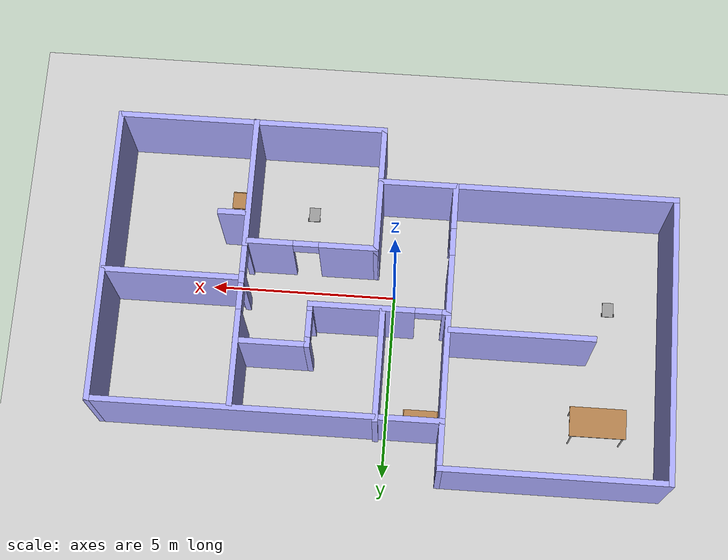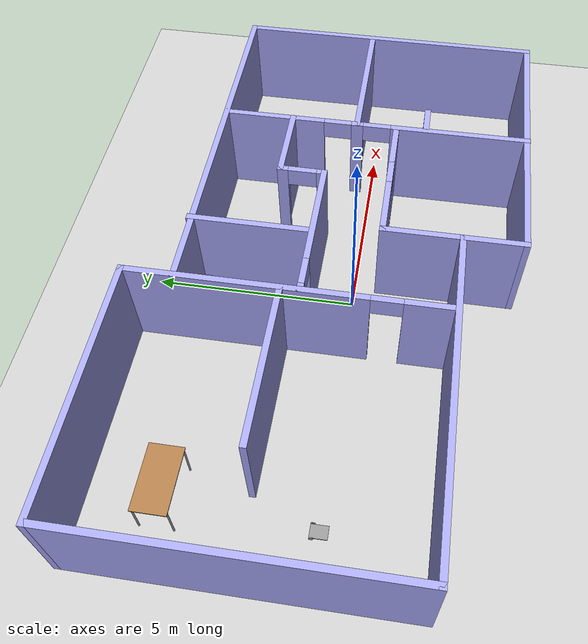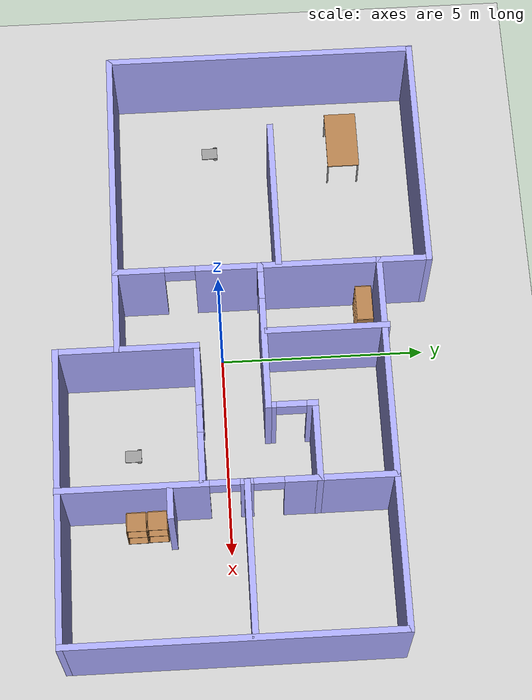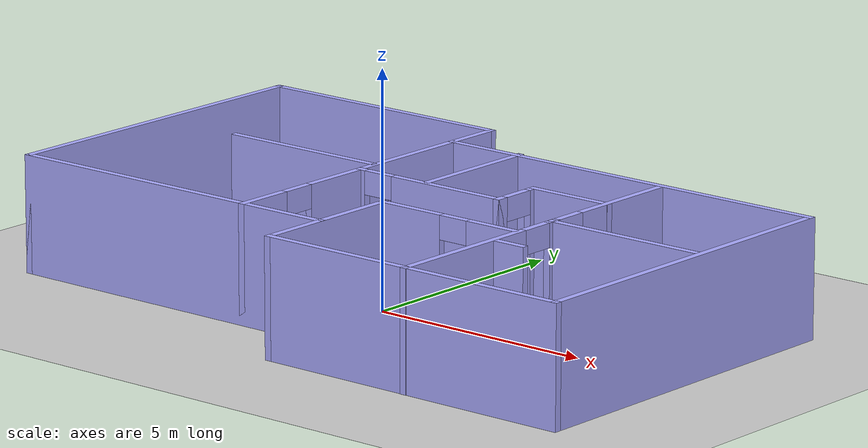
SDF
<sdf version="1.6">
 <world name="default">
  <plugin name="dummy" filename="libdummy.so"/>
  <light name="sun" type="directional">
   <pose>0 0 10 0 -0 0</pose>
   <diffuse>0.8 0.8 0.8 1</diffuse>
   <specular>0.2 0.2 0.2 1</specular>
   <attenuation>
    <range>1000</range>
    <constant>0.9</constant>
    <linear>0.01</linear>
    <quadratic>0.001</quadratic>
   </attenuation>
   <direction>-0.5 0.1 -0.9</direction>
  </light>
  <model name="ground_plane">
   <static>1</static>
   <link name="link">
    <collision name="collision">
     <geometry><plane><normal>0 0 1</normal><size>100 100</size></plane></geometry>
     <surface><friction><ode><mu>100</mu><mu2>50</mu2></ode></friction></surface>
    </collision>
    <visual name="visual">
     <cast_shadows>0</cast_shadows>
     <geometry><plane><normal>0 0 1</normal><size>100 100</size></plane></geometry>
     <material>
      <script><uri>file://media/materials/scripts/gazebo.material</uri><name>Gazebo/Grey</name></script>
     </material>
    </visual>
   </link>
  </model>
  <gravity>0 0 -9.8</gravity>
  <magnetic_field>6e-06 2.3e-05 -4.2e-05</magnetic_field>
  <atmosphere type="adiabatic"/>
  <physics name="default_physics" default="0" type="ode">
   <max_step_size>0.001</max_step_size>
   <real_time_factor>1</real_time_factor>
   <real_time_update_rate>1000</real_time_update_rate>
  </physics>
  <scene><ambient>0.4 0.4 0.4 1</ambient><background>0.7 0.7 0.7 1</background><shadows>1</shadows></scene>
  <spherical_coordinates>
   <surface_model>EARTH_WGS84</surface_model>
   <latitude_deg>0</latitude_deg>
   <longitude_deg>0</longitude_deg>
   <elevation>0</elevation>
   <heading_deg>0</heading_deg>
  </spherical_coordinates>
  <model name="building_0">
   <pose>0.15832 0.581239 0 0 -0 0</pose>
   <link name="Wall_43">
    <collision name="Wall_43_Collision">
     <geometry><box><size>7.75 0.15 2.5</size></box></geometry>
     <pose>0 0 1.25 0 -0 0</pose>
    </collision>
    <visual name="Wall_43_Visual">
     <pose>0 0 1.25 0 -0 0</pose>
     <geometry><box><size>7.75 0.15 2.5</size></box></geometry>
     <material>
      <script><uri>file://media/materials/scripts/gazebo.material</uri><name>Gazebo/Grey</name></script>
      <ambient>0.666667 0.666667 1 1</ambient>
     </material>
     <meta><layer>0</layer></meta>
    </visual>
    <pose>-7.47602 0.737961 0 0 0 -1.5708</pose>
   </link>
   <link name="Wall_45">
    <pose>-1.62602 0.737961 0 0 -0 1.5708</pose>
    <visual name="Wall_45_Visual_0">
     <pose>-3.24057 0 1.25 0 -0 0</pose>
     <geometry><box><size>1.26887 0.15 2.5</size></box></geometry>
     <material>
      <script><uri>file://media/materials/scripts/gazebo.material</uri><name>Gazebo/Grey</name></script>
      <ambient>0.666667 0.666667 1 1</ambient>
     </material>
     <meta><layer>0</layer></meta>
    </visual>
    <collision name="Wall_45_Collision_0">
     <geometry><box><size>1.26887 0.15 2.5</size></box></geometry>
     <pose>-3.24057 0 1.25 0 -0 0</pose>
    </collision>
    <visual name="Wall_45_Visual_1">
     <pose>1.00348 0 1.25 0 -0 0</pose>
     <geometry><box><size>5.74305 0.15 2.5</size></box></geometry>
     <material>
      <script><uri>file://media/materials/scripts/gazebo.material</uri><name>Gazebo/Grey</name></script>
      <ambient>0.666667 0.666667 1 1</ambient>
     </material>
     <meta><layer>0</layer></meta>
    </visual>
    <collision name="Wall_45_Collision_1">
     <geometry><box><size>5.74305 0.15 2.5</size></box></geometry>
     <pose>1.00348 0 1.25 0 -0 0</pose>
    </collision>
    <visual name="Wall_45_Visual_2">
     <pose>-2.23709 0 2.25 0 -0 0</pose>
     <geometry><box><size>0.738086 0.15 0.5</size></box></geometry>
     <material>
      <script><uri>file://media/materials/scripts/gazebo.material</uri><name>Gazebo/Grey</name></script>
      <ambient>0.666667 0.666667 1 1</ambient>
     </material>
     <meta><layer>0</layer></meta>
    </visual>
    <collision name="Wall_45_Collision_2">
     <geometry><box><size>0.738086 0.15 0.5</size></box></geometry>
     <pose>-2.23709 0 2.25 0 -0 0</pose>
    </collision>
   </link>
   <link name="Wall_46">
    <collision name="Wall_46_Collision">
     <geometry><box><size>6 0.15 2.5</size></box></geometry>
     <pose>0 0 1.25 0 -0 0</pose>
    </collision>
    <visual name="Wall_46_Visual">
     <pose>0 0 1.25 0 -0 0</pose>
     <geometry><box><size>6 0.15 2.5</size></box></geometry>
     <material>
      <script><uri>file://media/materials/scripts/gazebo.material</uri><name>Gazebo/Grey</name></script>
      <ambient>0.666667 0.666667 1 1</ambient>
     </material>
     <meta><layer>0</layer></meta>
    </visual>
    <pose>-4.55102 4.53796 0 0 -0 3.14159</pose>
   </link>
   <link name="Wall_49">
    <collision name="Wall_49_Collision">
     <geometry><box><size>3.85 0.15 2.5</size></box></geometry>
     <pose>0 0 1.25 0 -0 0</pose>
    </collision>
    <visual name="Wall_49_Visual">
     <pose>0 0 1.25 0 -0 0</pose>
     <geometry><box><size>3.85 0.15 2.5</size></box></geometry>
     <material>
      <script><uri>file://media/materials/scripts/gazebo.material</uri><name>Gazebo/Grey</name></script>
      <ambient>0.666667 0.666667 1 1</ambient>
     </material>
     <meta><layer>0</layer></meta>
    </visual>
    <pose>-3.55632 0.89476 0 0 -0 0</pose>
   </link>
   <link name="Wall_51">
    <collision name="Wall_51_Collision">
     <geometry><box><size>9.25 0.15 2.5</size></box></geometry>
     <pose>0 0 1.25 0 -0 0</pose>
    </collision>
    <visual name="Wall_51_Visual">
     <pose>0 0 1.25 0 -0 0</pose>
     <geometry><box><size>9.25 0.15 2.5</size></box></geometry>
     <material>
      <script><uri>file://media/materials/scripts/gazebo.material</uri><name>Gazebo/Grey</name></script>
      <ambient>0.666667 0.666667 1 1</ambient>
     </material>
     <meta><layer>0</layer></meta>
    </visual>
    <pose>2.92602 3.3236 0 0 -0 0</pose>
   </link>
   <link name="Wall_52">
    <collision name="Wall_52_Collision">
     <geometry><box><size>8 0.15 2.5</size></box></geometry>
     <pose>0 0 1.25 0 -0 0</pose>
    </collision>
    <visual name="Wall_52_Visual">
     <pose>0 0 1.25 0 -0 0</pose>
     <geometry><box><size>8 0.15 2.5</size></box></geometry>
     <material>
      <script><uri>file://media/materials/scripts/gazebo.material</uri><name>Gazebo/Grey</name></script>
      <ambient>0.666667 0.666667 1 1</ambient>
     </material>
     <meta><layer>0</layer></meta>
    </visual>
    <pose>7.47602 -0.601396 0 0 0 -1.5708</pose>
   </link>
   <link name="Wall_53">
    <collision name="Wall_53_Collision">
     <geometry><box><size>7.25 0.15 2.5</size></box></geometry>
     <pose>0 0 1.25 0 -0 0</pose>
    </collision>
    <visual name="Wall_53_Visual">
     <pose>0 0 1.25 0 -0 0</pose>
     <geometry><box><size>7.25 0.15 2.5</size></box></geometry>
     <material>
      <script><uri>file://media/materials/scripts/gazebo.material</uri><name>Gazebo/Grey</name></script>
      <ambient>0.666667 0.666667 1 1</ambient>
     </material>
     <meta><layer>0</layer></meta>
    </visual>
    <pose>3.92602 -4.5264 0 0 -0 3.14159</pose>
   </link>
   <link name="Wall_54">
    <collision name="Wall_54_Collision">
     <geometry><box><size>3.5 0.15 2.5</size></box></geometry>
     <pose>0 0 1.25 0 -0 0</pose>
    </collision>
    <visual name="Wall_54_Visual">
     <pose>0 0 1.25 0 -0 0</pose>
     <geometry><box><size>3.5 0.15 2.5</size></box></geometry>
     <material>
      <script><uri>file://media/materials/scripts/gazebo.material</uri><name>Gazebo/Grey</name></script>
      <ambient>0.666667 0.666667 1 1</ambient>
     </material>
     <meta><layer>0</layer></meta>
    </visual>
    <pose>0.376022 -2.8514 0 0 -0 1.5708</pose>
   </link>
   <link name="Wall_55">
    <pose>2.05102 -1.1764 0 0 -0 0</pose>
    <visual name="Wall_55_Visual_0">
     <pose>-0.956942 0 1.25 0 -0 0</pose>
     <geometry><box><size>1.58612 0.15 2.5</size></box></geometry>
     <material>
      <script><uri>file://media/materials/scripts/gazebo.material</uri><name>Gazebo/Grey</name></script>
      <ambient>0.666667 0.666667 1 1</ambient>
     </material>
     <meta><layer>0</layer></meta>
    </visual>
    <collision name="Wall_55_Collision_0">
     <geometry><box><size>1.58612 0.15 2.5</size></box></geometry>
     <pose>-0.956942 0 1.25 0 -0 0</pose>
    </collision>
    <visual name="Wall_55_Visual_1">
     <pose>1.13319 0 1.25 0 -0 0</pose>
     <geometry><box><size>1.23362 0.15 2.5</size></box></geometry>
     <material>
      <script><uri>file://media/materials/scripts/gazebo.material</uri><name>Gazebo/Grey</name></script>
      <ambient>0.666667 0.666667 1 1</ambient>
     </material>
     <meta><layer>0</layer></meta>
    </visual>
    <collision name="Wall_55_Collision_1">
     <geometry><box><size>1.23362 0.15 2.5</size></box></geometry>
     <pose>1.13319 0 1.25 0 -0 0</pose>
    </collision>
    <visual name="Wall_55_Visual_2">
     <pose>0.176246 0 2.25 0 -0 0</pose>
     <geometry><box><size>0.680259 0.15 0.5</size></box></geometry>
     <material>
      <script><uri>file://media/materials/scripts/gazebo.material</uri><name>Gazebo/Grey</name></script>
      <ambient>0.666667 0.666667 1 1</ambient>
     </material>
     <meta><layer>0</layer></meta>
    </visual>
    <collision name="Wall_55_Collision_2">
     <geometry><box><size>0.680259 0.15 0.5</size></box></geometry>
     <pose>0.176246 0 2.25 0 -0 0</pose>
    </collision>
   </link>
   <link name="Wall_57">
    <collision name="Wall_57_Collision">
     <geometry><box><size>8 0.15 2.5</size></box></geometry>
     <pose>0 0 1.25 0 -0 0</pose>
    </collision>
    <visual name="Wall_57_Visual">
     <pose>0 0 1.25 0 -0 0</pose>
     <geometry><box><size>8 0.15 2.5</size></box></geometry>
     <material>
      <script><uri>file://media/materials/scripts/gazebo.material</uri><name>Gazebo/Grey</name></script>
      <ambient>0.666667 0.666667 1 1</ambient>
     </material>
     <meta><layer>0</layer></meta>
    </visual>
    <pose>-3.55102 -3.06204 0 0 -0 0</pose>
   </link>
   <link name="Wall_59">
    <pose>3.82328 -0.612961 0 0 0 -1.5708</pose>
    <visual name="Wall_59_Visual_0">
     <pose>-2.66377 0 1.25 0 -0 0</pose>
     <geometry><box><size>2.67246 0.15 2.5</size></box></geometry>
     <material>
      <script><uri>file://media/materials/scripts/gazebo.material</uri><name>Gazebo/Grey</name></script>
      <ambient>0.666667 0.666667 1 1</ambient>
     </material>
     <meta><layer>0</layer></meta>
    </visual>
    <collision name="Wall_59_Collision_0">
     <geometry><box><size>2.67246 0.15 2.5</size></box></geometry>
     <pose>-2.66377 0 1.25 0 -0 0</pose>
    </collision>
    <visual name="Wall_59_Visual_1">
     <pose>-0.4583 0 1.25 0 -0 0</pose>
     <geometry><box><size>0.308574 0.15 2.5</size></box></geometry>
     <material>
      <script><uri>file://media/materials/scripts/gazebo.material</uri><name>Gazebo/Grey</name></script>
      <ambient>0.666667 0.666667 1 1</ambient>
     </material>
     <meta><layer>0</layer></meta>
    </visual>
    <collision name="Wall_59_Collision_1">
     <geometry><box><size>0.308574 0.15 2.5</size></box></geometry>
     <pose>-0.4583 0 1.25 0 -0 0</pose>
    </collision>
    <visual name="Wall_59_Visual_2">
     <pose>2.20547 0 1.25 0 -0 0</pose>
     <geometry><box><size>3.58906 0.15 2.5</size></box></geometry>
     <material>
      <script><uri>file://media/materials/scripts/gazebo.material</uri><name>Gazebo/Grey</name></script>
      <ambient>0.666667 0.666667 1 1</ambient>
     </material>
     <meta><layer>0</layer></meta>
    </visual>
    <collision name="Wall_59_Collision_2">
     <geometry><box><size>3.58906 0.15 2.5</size></box></geometry>
     <pose>2.20547 0 1.25 0 -0 0</pose>
    </collision>
    <visual name="Wall_59_Visual_3">
     <pose>-0.970065 0 2.25 0 -0 0</pose>
     <geometry><box><size>0.714955 0.15 0.5</size></box></geometry>
     <material>
      <script><uri>file://media/materials/scripts/gazebo.material</uri><name>Gazebo/Grey</name></script>
      <ambient>0.666667 0.666667 1 1</ambient>
     </material>
     <meta><layer>0</layer></meta>
    </visual>
    <collision name="Wall_59_Collision_3">
     <geometry><box><size>0.714955 0.15 0.5</size></box></geometry>
     <pose>-0.970065 0 2.25 0 -0 0</pose>
    </collision>
    <visual name="Wall_59_Visual_4">
     <pose>0.053465 0 2.25 0 -0 0</pose>
     <geometry><box><size>0.714955 0.15 0.5</size></box></geometry>
     <material>
      <script><uri>file://media/materials/scripts/gazebo.material</uri><name>Gazebo/Grey</name></script>
      <ambient>0.666667 0.666667 1 1</ambient>
     </material>
     <meta><layer>0</layer></meta>
    </visual>
    <collision name="Wall_59_Collision_4">
     <geometry><box><size>0.714955 0.15 0.5</size></box></geometry>
     <pose>0.053465 0 2.25 0 -0 0</pose>
    </collision>
   </link>
   <link name="Wall_61">
    <collision name="Wall_61_Collision">
     <geometry><box><size>0.75 0.15 2.5</size></box></geometry>
     <pose>0 0 1.25 0 -0 0</pose>
    </collision>
    <visual name="Wall_61_Visual">
     <pose>0 0 1.25 0 -0 0</pose>
     <geometry><box><size>0.75 0.15 2.5</size></box></geometry>
     <material>
      <script><uri>file://media/materials/scripts/gazebo.material</uri><name>Gazebo/Grey</name></script>
      <ambient>0.666667 0.666667 1 1</ambient>
     </material>
     <meta><layer>0</layer></meta>
    </visual>
    <pose>4.25189 -1.93861 0 0 -0 3.14159</pose>
   </link>
   <link name="Wall_63">
    <pose>0.176022 0.443843 0 0 -0 0</pose>
    <visual name="Wall_63_Visual_0">
     <pose>-1.75313 0 1.25 0 -0 0</pose>
     <geometry><box><size>0.243744 0.15 2.5</size></box></geometry>
     <material>
      <script><uri>file://media/materials/scripts/gazebo.material</uri><name>Gazebo/Grey</name></script>
      <ambient>0.666667 0.666667 1 1</ambient>
     </material>
     <meta><layer>0</layer></meta>
    </visual>
    <collision name="Wall_63_Collision_0">
     <geometry><box><size>0.243744 0.15 2.5</size></box></geometry>
     <pose>-1.75313 0 1.25 0 -0 0</pose>
    </collision>
    <visual name="Wall_63_Visual_1">
     <pose>0.473567 0 1.25 0 -0 0</pose>
     <geometry><box><size>2.80287 0.15 2.5</size></box></geometry>
     <material>
      <script><uri>file://media/materials/scripts/gazebo.material</uri><name>Gazebo/Grey</name></script>
      <ambient>0.666667 0.666667 1 1</ambient>
     </material>
     <meta><layer>0</layer></meta>
    </visual>
    <collision name="Wall_63_Collision_1">
     <geometry><box><size>2.80287 0.15 2.5</size></box></geometry>
     <pose>0.473567 0 1.25 0 -0 0</pose>
    </collision>
    <visual name="Wall_63_Visual_2">
     <pose>-1.27956 0 2.25 0 -0 0</pose>
     <geometry><box><size>0.70339 0.15 0.5</size></box></geometry>
     <material>
      <script><uri>file://media/materials/scripts/gazebo.material</uri><name>Gazebo/Grey</name></script>
      <ambient>0.666667 0.666667 1 1</ambient>
     </material>
     <meta><layer>0</layer></meta>
    </visual>
    <collision name="Wall_63_Collision_2">
     <geometry><box><size>0.70339 0.15 0.5</size></box></geometry>
     <pose>-1.27956 0 2.25 0 -0 0</pose>
    </collision>
   </link>
   <link name="Wall_64">
    <pose>1.97602 0.993844 0 0 -0 1.5708</pose>
    <visual name="Wall_64_Visual_0">
     <pose>-0.494454 0 1.25 0 -0 0</pose>
     <geometry><box><size>0.261092 0.15 2.5</size></box></geometry>
     <material>
      <script><uri>file://media/materials/scripts/gazebo.material</uri><name>Gazebo/Grey</name></script>
      <ambient>0.666667 0.666667 1 1</ambient>
     </material>
     <meta><layer>0</layer></meta>
    </visual>
    <collision name="Wall_64_Collision_0">
     <geometry><box><size>0.261092 0.15 2.5</size></box></geometry>
     <pose>-0.494454 0 1.25 0 -0 0</pose>
    </collision>
    <visual name="Wall_64_Visual_1">
     <pose>0.488023 0 1.25 0 -0 0</pose>
     <geometry><box><size>0.273953 0.15 2.5</size></box></geometry>
     <material>
      <script><uri>file://media/materials/scripts/gazebo.material</uri><name>Gazebo/Grey</name></script>
      <ambient>0.666667 0.666667 1 1</ambient>
     </material>
     <meta><layer>0</layer></meta>
    </visual>
    <collision name="Wall_64_Collision_1">
     <geometry><box><size>0.273953 0.15 2.5</size></box></geometry>
     <pose>0.488023 0 1.25 0 -0 0</pose>
    </collision>
    <visual name="Wall_64_Visual_2">
     <pose>-0.006431 0 2.25 0 -0 0</pose>
     <geometry><box><size>0.714955 0.15 0.5</size></box></geometry>
     <material>
      <script><uri>file://media/materials/scripts/gazebo.material</uri><name>Gazebo/Grey</name></script>
      <ambient>0.666667 0.666667 1 1</ambient>
     </material>
     <meta><layer>0</layer></meta>
    </visual>
    <collision name="Wall_64_Collision_2">
     <geometry><box><size>0.714955 0.15 0.5</size></box></geometry>
     <pose>-0.006431 0 2.25 0 -0 0</pose>
    </collision>
   </link>
   <link name="Wall_65">
    <collision name="Wall_65_Collision">
     <geometry><box><size>2 0.15 2.5</size></box></geometry>
     <pose>0 0 1.25 0 -0 0</pose>
    </collision>
    <visual name="Wall_65_Visual">
     <pose>0 0 1.25 0 -0 0</pose>
     <geometry><box><size>2 0.15 2.5</size></box></geometry>
     <material>
      <script><uri>file://media/materials/scripts/gazebo.material</uri><name>Gazebo/Grey</name></script>
      <ambient>0.666667 0.666667 1 1</ambient>
     </material>
     <meta><layer>0</layer></meta>
    </visual>
    <pose>2.90102 1.54384 0 0 -0 0</pose>
   </link>
   <link name="Wall_67">
    <collision name="Wall_67_Collision">
     <geometry><box><size>3 0.15 2.5</size></box></geometry>
     <pose>0 0 1.25 0 -0 0</pose>
    </collision>
    <visual name="Wall_67_Visual">
     <pose>0 0 1.25 0 -0 0</pose>
     <geometry><box><size>3 0.15 2.5</size></box></geometry>
     <material>
      <script><uri>file://media/materials/scripts/gazebo.material</uri><name>Gazebo/Grey</name></script>
      <ambient>0.666667 0.666667 1 1</ambient>
     </material>
     <meta><layer>0</layer></meta>
    </visual>
    <pose>0.087687 1.95643 0 0 0 -1.5708</pose>
   </link>
   <link name="Wall_69">
    <collision name="Wall_69_Collision">
     <geometry><box><size>3.75 0.15 2.5</size></box></geometry>
     <pose>0 0 1.25 0 -0 0</pose>
    </collision>
    <visual name="Wall_69_Visual">
     <pose>0 0 1.25 0 -0 0</pose>
     <geometry><box><size>3.75 0.15 2.5</size></box></geometry>
     <material>
      <script><uri>file://media/materials/scripts/gazebo.material</uri><name>Gazebo/Grey</name></script>
      <ambient>0.666667 0.666667 1 1</ambient>
     </material>
     <meta><layer>0</layer></meta>
    </visual>
    <pose>5.63485 -0.145987 0 0 -0 0</pose>
   </link>
   <static>1</static>
  </model>
  <model name="table">
   <static>1</static>
   <link name="link">
    <collision name="surface">
     <pose>0 0 1 0 -0 0</pose>
     <geometry><box><size>1.5 0.8 0.03</size></box></geometry>
     <surface><friction><ode><mu>0.6</mu><mu2>0.6</mu2></ode></friction></surface>
    </collision>
    <visual name="visual1">
     <pose>0 0 1 0 -0 0</pose>
     <geometry><box><size>1.5 0.8 0.03</size></box></geometry>
     <material>
      <script><uri>file://media/materials/scripts/gazebo.material</uri><name>Gazebo/Wood</name></script>
     </material>
    </visual>
    <collision name="front_left_leg">
     <pose>0.68 0.38 0.5 0 -0 0</pose>
     <geometry><cylinder><radius>0.02</radius><length>1</length></cylinder></geometry>
    </collision>
    <visual name="front_left_leg">
     <pose>0.68 0.38 0.5 0 -0 0</pose>
     <geometry><cylinder><radius>0.02</radius><length>1</length></cylinder></geometry>
     <material>
      <script><uri>file://media/materials/scripts/gazebo.material</uri><name>Gazebo/Grey</name></script>
     </material>
    </visual>
    <collision name="front_right_leg">
     <pose>0.68 -0.38 0.5 0 -0 0</pose>
     <geometry><cylinder><radius>0.02</radius><length>1</length></cylinder></geometry>
    </collision>
    <visual name="front_right_leg">
     <pose>0.68 -0.38 0.5 0 -0 0</pose>
     <geometry><cylinder><radius>0.02</radius><length>1</length></cylinder></geometry>
     <material>
      <script><uri>file://media/materials/scripts/gazebo.material</uri><name>Gazebo/Grey</name></script>
     </material>
    </visual>
    <collision name="back_right_leg">
     <pose>-0.68 -0.38 0.5 0 -0 0</pose>
     <geometry><cylinder><radius>0.02</radius><length>1</length></cylinder></geometry>
    </collision>
    <visual name="back_right_leg">
     <pose>-0.68 -0.38 0.5 0 -0 0</pose>
     <geometry><cylinder><radius>0.02</radius><length>1</length></cylinder></geometry>
     <material>
      <script><uri>file://media/materials/scripts/gazebo.material</uri><name>Gazebo/Grey</name></script>
     </material>
    </visual>
    <collision name="back_left_leg">
     <pose>-0.68 0.38 0.5 0 -0 0</pose>
     <geometry><cylinder><radius>0.02</radius><length>1</length></cylinder></geometry>
    </collision>
    <visual name="back_left_leg">
     <pose>-0.68 0.38 0.5 0 -0 0</pose>
     <geometry><cylinder><radius>0.02</radius><length>1</length></cylinder></geometry>
     <material>
      <script><uri>file://media/materials/scripts/gazebo.material</uri><name>Gazebo/Grey</name></script>
     </material>
    </visual>
   </link>
   <pose>-5.59356 3.34179 0 0 -0 0</pose>
  </model>
  <model name="cabinet">
   <static>1</static>
   <link name="cabinet_bottom_plate">
    <inertial>
     <pose>0 0 -1 0 -0 0</pose>
     <inertia><ixx>2.05</ixx><ixy>0</ixy><ixz>0</ixz><iyy>2.05</iyy><iyz>0</iyz><izz>2.05</izz></inertia>
     <mass>25</mass>
    </inertial>
    <collision name="cabinet_bottom_plate_geom">
     <pose>0 0 0.01 0 -0 0</pose>
     <geometry><box><size>0.45 0.45 0.02</size></box></geometry>
    </collision>
    <visual name="cabinet_bottom_plate_geom_visual">
     <pose>0 0 0.01 0 -0 0</pose>
     <geometry><box><size>0.45 0.45 0.02</size></box></geometry>
     <material>
      <script><uri>file://media/materials/scripts/gazebo.material</uri><name>Gazebo/Wood</name></script>
     </material>
    </visual>
    <collision name="cabinet_bottom_plate_geom_cabinet_back_plate">
     <pose>0.235 0 0.51 0 -0 0</pose>
     <geometry><box><size>0.02 0.45 1.02</size></box></geometry>
    </collision>
    <visual name="cabinet_bottom_plate_geom_cabinet_back_plate_visual">
     <pose>0.235 0 0.51 0 -0 0</pose>
     <geometry><box><size>0.02 0.45 1.02</size></box></geometry>
     <material>
      <script><uri>file://media/materials/scripts/gazebo.material</uri><name>Gazebo/Wood</name></script>
     </material>
    </visual>
    <collision name="cabinet_bottom_plate_geom_cabinet_left_plate">
     <pose>0 0.235 0.51 0 -0 0</pose>
     <geometry><box><size>0.45 0.02 1.02</size></box></geometry>
    </collision>
    <visual name="cabinet_bottom_plate_geom_cabinet_left_plate_visual">
     <pose>0 0.235 0.51 0 -0 0</pose>
     <geometry><box><size>0.45 0.02 1.02</size></box></geometry>
     <material>
      <script><uri>file://media/materials/scripts/gazebo.material</uri><name>Gazebo/Wood</name></script>
     </material>
    </visual>
    <collision name="cabinet_bottom_plate_geom_cabinet_middle_plate">
     <pose>0 0 0.51 0 -0 0</pose>
     <geometry><box><size>0.45 0.45 0.02</size></box></geometry>
    </collision>
    <visual name="cabinet_bottom_plate_geom_cabinet_middle_plate_visual">
     <pose>0 0 0.51 0 -0 0</pose>
     <geometry><box><size>0.45 0.45 0.02</size></box></geometry>
     <material>
      <script><uri>file://media/materials/scripts/gazebo.material</uri><name>Gazebo/Wood</name></script>
     </material>
    </visual>
    <collision name="cabinet_bottom_plate_geom_cabinet_right_plate">
     <pose>0 -0.235 0.51 0 -0 0</pose>
     <geometry><box><size>0.45 0.02 1.02</size></box></geometry>
    </collision>
    <visual name="cabinet_bottom_plate_geom_cabinet_right_plate_visual">
     <pose>0 -0.235 0.51 0 -0 0</pose>
     <geometry><box><size>0.45 0.02 1.02</size></box></geometry>
     <material>
      <script><uri>file://media/materials/scripts/gazebo.material</uri><name>Gazebo/Wood</name></script>
     </material>
    </visual>
    <collision name="cabinet_bottom_plate_geom_cabinet_top_plate">
     <pose>0 0 1.01 0 -0 0</pose>
     <geometry><box><size>0.45 0.45 0.02</size></box></geometry>
    </collision>
    <visual name="cabinet_bottom_plate_geom_cabinet_top_plate_visual">
     <pose>0 0 1.01 0 -0 0</pose>
     <geometry><box><size>0.45 0.45 0.02</size></box></geometry>
     <material>
      <script><uri>file://media/materials/scripts/gazebo.material</uri><name>Gazebo/Wood</name></script>
     </material>
    </visual>
   </link>
   <pose>4.35501 -1.72628 -0.004926 0 -0 3.1413</pose>
  </model>
  <model name="cabinet_clone">
   <static>1</static>
   <link name="cabinet_bottom_plate">
    <inertial>
     <pose>0 0 -1 0 -0 0</pose>
     <inertia><ixx>2.05</ixx><ixy>0</ixy><ixz>0</ixz><iyy>2.05</iyy><iyz>0</iyz><izz>2.05</izz></inertia>
     <mass>25</mass>
    </inertial>
    <collision name="cabinet_bottom_plate_geom">
     <pose>0 0 0.01 0 -0 0</pose>
     <geometry><box><size>0.45 0.45 0.02</size></box></geometry>
    </collision>
    <visual name="cabinet_bottom_plate_geom_visual">
     <pose>0 0 0.01 0 -0 0</pose>
     <geometry><box><size>0.45 0.45 0.02</size></box></geometry>
     <material>
      <script><uri>file://media/materials/scripts/gazebo.material</uri><name>Gazebo/Wood</name></script>
     </material>
    </visual>
    <collision name="cabinet_bottom_plate_geom_cabinet_back_plate">
     <pose>0.235 0 0.51 0 -0 0</pose>
     <geometry><box><size>0.02 0.45 1.02</size></box></geometry>
    </collision>
    <visual name="cabinet_bottom_plate_geom_cabinet_back_plate_visual">
     <pose>0.235 0 0.51 0 -0 0</pose>
     <geometry><box><size>0.02 0.45 1.02</size></box></geometry>
     <material>
      <script><uri>file://media/materials/scripts/gazebo.material</uri><name>Gazebo/Wood</name></script>
     </material>
    </visual>
    <collision name="cabinet_bottom_plate_geom_cabinet_left_plate">
     <pose>0 0.235 0.51 0 -0 0</pose>
     <geometry><box><size>0.45 0.02 1.02</size></box></geometry>
    </collision>
    <visual name="cabinet_bottom_plate_geom_cabinet_left_plate_visual">
     <pose>0 0.235 0.51 0 -0 0</pose>
     <geometry><box><size>0.45 0.02 1.02</size></box></geometry>
     <material>
      <script><uri>file://media/materials/scripts/gazebo.material</uri><name>Gazebo/Wood</name></script>
     </material>
    </visual>
    <collision name="cabinet_bottom_plate_geom_cabinet_middle_plate">
     <pose>0 0 0.51 0 -0 0</pose>
     <geometry><box><size>0.45 0.45 0.02</size></box></geometry>
    </collision>
    <visual name="cabinet_bottom_plate_geom_cabinet_middle_plate_visual">
     <pose>0 0 0.51 0 -0 0</pose>
     <geometry><box><size>0.45 0.45 0.02</size></box></geometry>
     <material>
      <script><uri>file://media/materials/scripts/gazebo.material</uri><name>Gazebo/Wood</name></script>
     </material>
    </visual>
    <collision name="cabinet_bottom_plate_geom_cabinet_right_plate">
     <pose>0 -0.235 0.51 0 -0 0</pose>
     <geometry><box><size>0.45 0.02 1.02</size></box></geometry>
    </collision>
    <visual name="cabinet_bottom_plate_geom_cabinet_right_plate_visual">
     <pose>0 -0.235 0.51 0 -0 0</pose>
     <geometry><box><size>0.45 0.02 1.02</size></box></geometry>
     <material>
      <script><uri>file://media/materials/scripts/gazebo.material</uri><name>Gazebo/Wood</name></script>
     </material>
    </visual>
    <collision name="cabinet_bottom_plate_geom_cabinet_top_plate">
     <pose>0 0 1.01 0 -0 0</pose>
     <geometry><box><size>0.45 0.45 0.02</size></box></geometry>
    </collision>
    <visual name="cabinet_bottom_plate_geom_cabinet_top_plate_visual">
     <pose>0 0 1.01 0 -0 0</pose>
     <geometry><box><size>0.45 0.45 0.02</size></box></geometry>
     <material>
      <script><uri>file://media/materials/scripts/gazebo.material</uri><name>Gazebo/Wood</name></script>
     </material>
    </visual>
   </link>
   <pose>4.36484 -2.22203 -0.004926 0 -0 3.1413</pose>
  </model>
  <model name="bookshelf">
   <static>1</static>
   <link name="link">
    <inertial><mass>1</mass></inertial>
    <collision name="back">
     <pose>0 0.005 0.6 0 -0 0</pose>
     <geometry><box><size>0.9 0.01 1.2</size></box></geometry>
    </collision>
    <visual name="visual1">
     <pose>0 0.005 0.6 0 -0 0</pose>
     <geometry><box><size>0.9 0.01 1.2</size></box></geometry>
     <material>
      <script><uri>file://media/materials/scripts/gazebo.material</uri><name>Gazebo/Wood</name></script>
     </material>
    </visual>
    <collision name="left_side">
     <pose>0.45 -0.195 0.6 0 -0 0</pose>
     <geometry><box><size>0.02 0.4 1.2</size></box></geometry>
    </collision>
    <visual name="visual2">
     <pose>0.45 -0.195 0.6 0 -0 0</pose>
     <geometry><box><size>0.02 0.4 1.2</size></box></geometry>
     <material>
      <script><uri>file://media/materials/scripts/gazebo.material</uri><name>Gazebo/Wood</name></script>
     </material>
    </visual>
    <collision name="right_side">
     <pose>-0.45 -0.195 0.6 0 -0 0</pose>
     <geometry><box><size>0.02 0.4 1.2</size></box></geometry>
    </collision>
    <visual name="visual3">
     <pose>-0.45 -0.195 0.6 0 -0 0</pose>
     <geometry><box><size>0.02 0.4 1.2</size></box></geometry>
     <material>
      <script><uri>file://media/materials/scripts/gazebo.material</uri><name>Gazebo/Wood</name></script>
     </material>
    </visual>
    <collision name="bottom">
     <pose>0 -0.195 0.03 0 -0 0</pose>
     <geometry><box><size>0.88 0.4 0.06</size></box></geometry>
    </collision>
    <visual name="visual4">
     <pose>0 -0.195 0.03 0 -0 0</pose>
     <geometry><box><size>0.88 0.4 0.06</size></box></geometry>
     <material>
      <script><uri>file://media/materials/scripts/gazebo.material</uri><name>Gazebo/Wood</name></script>
     </material>
    </visual>
    <collision name="top">
     <pose>0 -0.195 1.19 0 -0 0</pose>
     <geometry><box><size>0.88 0.4 0.02</size></box></geometry>
    </collision>
    <visual name="visual5">
     <pose>0 -0.195 1.19 0 -0 0</pose>
     <geometry><box><size>0.88 0.4 0.02</size></box></geometry>
     <material>
      <script><uri>file://media/materials/scripts/gazebo.material</uri><name>Gazebo/Wood</name></script>
     </material>
    </visual>
    <collision name="low_shelf">
     <pose>0 -0.195 0.43 0 -0 0</pose>
     <geometry><box><size>0.88 0.4 0.02</size></box></geometry>
    </collision>
    <visual name="visual6">
     <pose>0 -0.195 0.43 0 -0 0</pose>
     <geometry><box><size>0.88 0.4 0.02</size></box></geometry>
     <material>
      <script><uri>file://media/materials/scripts/gazebo.material</uri><name>Gazebo/Wood</name></script>
     </material>
    </visual>
    <collision name="high_shelf">
     <pose>0 -0.195 0.8 0 -0 0</pose>
     <geometry><box><size>0.88 0.4 0.02</size></box></geometry>
    </collision>
    <visual name="visual7">
     <pose>0 -0.195 0.8 0 -0 0</pose>
     <geometry><box><size>0.88 0.4 0.02</size></box></geometry>
     <material>
      <script><uri>file://media/materials/scripts/gazebo.material</uri><name>Gazebo/Wood</name></script>
     </material>
    </visual>
   </link>
   <pose>-0.915344 3.76169 0 0 -0 0</pose>
  </model>
  <model name="cart">
   <link name="link_1">
    <pose>0.002272 -0.032498 0.00625 0 -0 0</pose>
    <inertial>
     <mass>1</mass>
     <inertia>
      <ixx>0.166667</ixx>
      <ixy>0</ixy>
      <ixz>0</ixz>
      <iyy>0.166667</iyy>
      <iyz>0</iyz>
      <izz>0.166667</izz>
     </inertia>
    </inertial>
    <visual name="visual">
     <geometry><box><size>0.3 0.4 0.025</size></box></geometry>
     <material>
      <lighting>1</lighting>
      <script><uri>file://media/materials/scripts/gazebo.material</uri><name>Gazebo/Grey</name></script>
      <shader type="pixel"><normal_map>__default__</normal_map></shader>
      <ambient>0.3 0.3 0.3 1</ambient>
      <diffuse>0.7 0.7 0.7 1</diffuse>
      <specular>0.01 0.01 0.01 1</specular>
      <emissive>0 0 0 1</emissive>
     </material>
    </visual>
    <collision name="collision">
     <geometry><box><size>0.3 0.4 0.025</size></box></geometry>
     <surface>
      <friction>
       <ode><mu>1</mu><mu2>1</mu2><fdir1>0 0 0</fdir1><slip1>0</slip1><slip2>0</slip2></ode>
       <torsional>
        <coefficient>1</coefficient>
        <patch_radius>0</patch_radius>
        <surface_radius>0</surface_radius>
        <use_patch_radius>1</use_patch_radius>
        <ode><slip>0</slip></ode>
       </torsional>
      </friction>
      <bounce><restitution_coefficient>0</restitution_coefficient><threshold>1e+06</threshold></bounce>
      <contact>
       <collide_without_contact>0</collide_without_contact>
       <collide_without_contact_bitmask>1</collide_without_contact_bitmask>
       <collide_bitmask>1</collide_bitmask>
       <ode>
        <soft_cfm>0</soft_cfm>
        <soft_erp>0.2</soft_erp>
        <kp>1e+13</kp>
        <kd>1</kd>
        <max_vel>0.01</max_vel>
        <min_depth>0</min_depth>
       </ode>
       <bullet>
        <split_impulse>1</split_impulse>
        <split_impulse_penetration_threshold>-0.01</split_impulse_penetration_threshold>
        <soft_cfm>0</soft_cfm>
        <soft_erp>0.2</soft_erp>
        <kp>1e+13</kp>
        <kd>1</kd>
       </bullet>
      </contact>
     </surface>
    </collision>
   </link>
   <link name="link_4">
    <pose>-0.006795 -0.202498 -0.01875 0 -0 0</pose>
    <inertial>
     <mass>1</mass>
     <inertia><ixx>0.1</ixx><ixy>0</ixy><ixz>0</ixz><iyy>0.1</iyy><iyz>0</iyz><izz>0.1</izz></inertia>
    </inertial>
    <visual name="visual">
     <geometry><sphere><radius>0.03</radius></sphere></geometry>
     <material>
      <lighting>1</lighting>
      <script><uri>file://media/materials/scripts/gazebo.material</uri><name>Gazebo/Grey</name></script>
      <shader type="pixel"><normal_map>__default__</normal_map></shader>
      <ambient>0.3 0.3 0.3 1</ambient>
      <diffuse>0.7 0.7 0.7 1</diffuse>
      <specular>0.01 0.01 0.01 1</specular>
      <emissive>0 0 0 1</emissive>
     </material>
    </visual>
    <collision name="collision">
     <geometry><sphere><radius>0.03</radius></sphere></geometry>
     <surface>
      <friction>
       <ode><mu>1</mu><mu2>1</mu2><fdir1>0 0 0</fdir1><slip1>0</slip1><slip2>0</slip2></ode>
       <torsional>
        <coefficient>1</coefficient>
        <patch_radius>0</patch_radius>
        <surface_radius>0</surface_radius>
        <use_patch_radius>1</use_patch_radius>
        <ode><slip>0</slip></ode>
       </torsional>
      </friction>
      <bounce><restitution_coefficient>0</restitution_coefficient><threshold>1e+06</threshold></bounce>
      <contact>
       <collide_without_contact>0</collide_without_contact>
       <collide_without_contact_bitmask>1</collide_without_contact_bitmask>
       <collide_bitmask>1</collide_bitmask>
       <ode>
        <soft_cfm>0</soft_cfm>
        <soft_erp>0.2</soft_erp>
        <kp>1e+13</kp>
        <kd>1</kd>
        <max_vel>0.01</max_vel>
        <min_depth>0</min_depth>
       </ode>
       <bullet>
        <split_impulse>1</split_impulse>
        <split_impulse_penetration_threshold>-0.01</split_impulse_penetration_threshold>
        <soft_cfm>0</soft_cfm>
        <soft_erp>0.2</soft_erp>
        <kp>1e+13</kp>
        <kd>1</kd>
       </bullet>
      </contact>
     </surface>
    </collision>
   </link>
   <link name="link_5">
    <pose>0.162272 0.117502 0.00625 0 -0 0</pose>
    <inertial>
     <mass>1</mass>
     <inertia><ixx>0.145833</ixx><ixy>0</ixy><ixz>0</ixz><iyy>0.145833</iyy><iyz>0</iyz><izz>0.125</izz></inertia>
    </inertial>
    <visual name="visual">
     <pose>0 0 0 3.14159 1.57079 3.14159</pose>
     <geometry><cylinder><radius>0.05</radius><length>0.02</length></cylinder></geometry>
     <material>
      <lighting>1</lighting>
      <script><uri>file://media/materials/scripts/gazebo.material</uri><name>Gazebo/Grey</name></script>
      <shader type="pixel"><normal_map>__default__</normal_map></shader>
      <ambient>0.3 0.3 0.3 1</ambient>
      <diffuse>0.7 0.7 0.7 1</diffuse>
      <specular>0.01 0.01 0.01 1</specular>
      <emissive>0 0 0 1</emissive>
     </material>
    </visual>
    <collision name="collision">
     <pose>0 0 0 3.14159 1.57079 3.14159</pose>
     <geometry><cylinder><radius>0.05</radius><length>0.02</length></cylinder></geometry>
     <surface>
      <friction>
       <ode><mu>1</mu><mu2>1</mu2><fdir1>0 0 0</fdir1><slip1>0</slip1><slip2>0</slip2></ode>
       <torsional>
        <coefficient>1</coefficient>
        <patch_radius>0</patch_radius>
        <surface_radius>0</surface_radius>
        <use_patch_radius>1</use_patch_radius>
        <ode><slip>0</slip></ode>
       </torsional>
      </friction>
      <bounce><restitution_coefficient>0</restitution_coefficient><threshold>1e+06</threshold></bounce>
      <contact>
       <collide_without_contact>0</collide_without_contact>
       <collide_without_contact_bitmask>1</collide_without_contact_bitmask>
       <collide_bitmask>1</collide_bitmask>
       <ode>
        <soft_cfm>0</soft_cfm>
        <soft_erp>0.2</soft_erp>
        <kp>1e+13</kp>
        <kd>1</kd>
        <max_vel>0.01</max_vel>
        <min_depth>0</min_depth>
       </ode>
       <bullet>
        <split_impulse>1</split_impulse>
        <split_impulse_penetration_threshold>-0.01</split_impulse_penetration_threshold>
        <soft_cfm>0</soft_cfm>
        <soft_erp>0.2</soft_erp>
        <kp>1e+13</kp>
        <kd>1</kd>
       </bullet>
      </contact>
     </surface>
    </collision>
   </link>
   <link name="link_5_clone">
    <pose>-0.157729 0.117502 0.00625 0 -0 0</pose>
    <inertial>
     <mass>1</mass>
     <inertia><ixx>0.145833</ixx><ixy>0</ixy><ixz>0</ixz><iyy>0.145833</iyy><iyz>0</iyz><izz>0.125</izz></inertia>
    </inertial>
    <visual name="visual">
     <pose>0 0 0 3.14159 1.57079 3.14159</pose>
     <geometry><cylinder><radius>0.05</radius><length>0.02</length></cylinder></geometry>
     <material>
      <lighting>1</lighting>
      <script><uri>file://media/materials/scripts/gazebo.material</uri><name>Gazebo/Grey</name></script>
      <shader type="pixel"><normal_map>__default__</normal_map></shader>
      <ambient>0.3 0.3 0.3 1</ambient>
      <diffuse>0.7 0.7 0.7 1</diffuse>
      <specular>0.01 0.01 0.01 1</specular>
      <emissive>0 0 0 1</emissive>
     </material>
    </visual>
    <collision name="collision">
     <pose>0 0 0 3.14159 1.57079 3.14159</pose>
     <geometry><cylinder><radius>0.05</radius><length>0.02</length></cylinder></geometry>
     <surface>
      <friction>
       <ode><mu>1</mu><mu2>1</mu2><fdir1>0 0 0</fdir1><slip1>0</slip1><slip2>0</slip2></ode>
       <torsional>
        <coefficient>1</coefficient>
        <patch_radius>0</patch_radius>
        <surface_radius>0</surface_radius>
        <use_patch_radius>1</use_patch_radius>
        <ode><slip>0</slip></ode>
       </torsional>
      </friction>
      <bounce><restitution_coefficient>0</restitution_coefficient><threshold>1e+06</threshold></bounce>
      <contact>
       <collide_without_contact>0</collide_without_contact>
       <collide_without_contact_bitmask>1</collide_without_contact_bitmask>
       <collide_bitmask>1</collide_bitmask>
       <ode>
        <soft_cfm>0</soft_cfm>
        <soft_erp>0.2</soft_erp>
        <kp>1e+13</kp>
        <kd>1</kd>
        <max_vel>0.01</max_vel>
        <min_depth>0</min_depth>
       </ode>
       <bullet>
        <split_impulse>1</split_impulse>
        <split_impulse_penetration_threshold>-0.01</split_impulse_penetration_threshold>
        <soft_cfm>0</soft_cfm>
        <soft_erp>0.2</soft_erp>
        <kp>1e+13</kp>
        <kd>1</kd>
       </bullet>
      </contact>
     </surface>
    </collision>
   </link>
   <joint name="link_1_JOINT_2" type="revolute">
    <parent>link_1</parent>
    <child>link_4</child>
    <axis>
     <xyz>0 0 1</xyz>
     <use_parent_model_frame>0</use_parent_model_frame>
     <limit>
      <lower>-1.79769e+308</lower>
      <upper>1.79769e+308</upper>
      <effort>-1</effort>
      <velocity>-1</velocity>
     </limit>
     <dynamics>
      <spring_reference>0</spring_reference>
      <spring_stiffness>0</spring_stiffness>
      <damping>0</damping>
     </dynamics>
    </axis>
    <physics>
     <ode><limit><cfm>0</cfm><erp>0.2</erp></limit><suspension><cfm>0</cfm><erp>0.2</erp></suspension></ode>
    </physics>
   </joint>
   <joint name="link_1_JOINT_3" type="revolute">
    <parent>link_1</parent>
    <child>link_5</child>
    <axis>
     <xyz>-1 0 0</xyz>
     <use_parent_model_frame>0</use_parent_model_frame>
     <limit>
      <lower>-1.79769e+308</lower>
      <upper>1.79769e+308</upper>
      <effort>-1</effort>
      <velocity>-1</velocity>
     </limit>
     <dynamics>
      <spring_reference>0</spring_reference>
      <spring_stiffness>0</spring_stiffness>
      <damping>0</damping>
     </dynamics>
    </axis>
    <physics>
     <ode><limit><cfm>0</cfm><erp>0.2</erp></limit><suspension><cfm>0</cfm><erp>0.2</erp></suspension></ode>
    </physics>
   </joint>
   <joint name="link_1_JOINT_4" type="revolute">
    <parent>link_1</parent>
    <child>link_5_clone</child>
    <axis>
     <xyz>1 0 0</xyz>
     <use_parent_model_frame>0</use_parent_model_frame>
     <limit>
      <lower>-1.79769e+308</lower>
      <upper>1.79769e+308</upper>
      <effort>-1</effort>
      <velocity>-1</velocity>
     </limit>
     <dynamics>
      <spring_reference>0</spring_reference>
      <spring_stiffness>0</spring_stiffness>
      <damping>0</damping>
     </dynamics>
    </axis>
    <physics>
     <ode><limit><cfm>0</cfm><erp>0.2</erp></limit><suspension><cfm>0</cfm><erp>0.2</erp></suspension></ode>
    </physics>
   </joint>
   <static>0</static>
   <pose>2.38505 -2.2589 0.045585 -0.015617 2e-06 -0.000194</pose>
  </model>
  <model name="cart_clone">
   <link name="link_1">
    <pose>0.002272 -0.032498 0.00625 0 -0 0</pose>
    <inertial>
     <mass>1</mass>
     <inertia>
      <ixx>0.166667</ixx>
      <ixy>0</ixy>
      <ixz>0</ixz>
      <iyy>0.166667</iyy>
      <iyz>0</iyz>
      <izz>0.166667</izz>
     </inertia>
    </inertial>
    <visual name="visual">
     <geometry><box><size>0.3 0.4 0.025</size></box></geometry>
     <material>
      <lighting>1</lighting>
      <script><uri>file://media/materials/scripts/gazebo.material</uri><name>Gazebo/Grey</name></script>
      <shader type="pixel"><normal_map>__default__</normal_map></shader>
      <ambient>0.3 0.3 0.3 1</ambient>
      <diffuse>0.7 0.7 0.7 1</diffuse>
      <specular>0.01 0.01 0.01 1</specular>
      <emissive>0 0 0 1</emissive>
     </material>
    </visual>
    <collision name="collision">
     <geometry><box><size>0.3 0.4 0.025</size></box></geometry>
     <surface>
      <friction>
       <ode><mu>1</mu><mu2>1</mu2><fdir1>0 0 0</fdir1><slip1>0</slip1><slip2>0</slip2></ode>
       <torsional>
        <coefficient>1</coefficient>
        <patch_radius>0</patch_radius>
        <surface_radius>0</surface_radius>
        <use_patch_radius>1</use_patch_radius>
        <ode><slip>0</slip></ode>
       </torsional>
      </friction>
      <bounce><restitution_coefficient>0</restitution_coefficient><threshold>1e+06</threshold></bounce>
      <contact>
       <collide_without_contact>0</collide_without_contact>
       <collide_without_contact_bitmask>1</collide_without_contact_bitmask>
       <collide_bitmask>1</collide_bitmask>
       <ode>
        <soft_cfm>0</soft_cfm>
        <soft_erp>0.2</soft_erp>
        <kp>1e+13</kp>
        <kd>1</kd>
        <max_vel>0.01</max_vel>
        <min_depth>0</min_depth>
       </ode>
       <bullet>
        <split_impulse>1</split_impulse>
        <split_impulse_penetration_threshold>-0.01</split_impulse_penetration_threshold>
        <soft_cfm>0</soft_cfm>
        <soft_erp>0.2</soft_erp>
        <kp>1e+13</kp>
        <kd>1</kd>
       </bullet>
      </contact>
     </surface>
    </collision>
   </link>
   <link name="link_4">
    <pose>-0.006795 -0.202498 -0.01875 0 -0 0</pose>
    <inertial>
     <mass>1</mass>
     <inertia><ixx>0.1</ixx><ixy>0</ixy><ixz>0</ixz><iyy>0.1</iyy><iyz>0</iyz><izz>0.1</izz></inertia>
    </inertial>
    <visual name="visual">
     <geometry><sphere><radius>0.03</radius></sphere></geometry>
     <material>
      <lighting>1</lighting>
      <script><uri>file://media/materials/scripts/gazebo.material</uri><name>Gazebo/Grey</name></script>
      <shader type="pixel"><normal_map>__default__</normal_map></shader>
      <ambient>0.3 0.3 0.3 1</ambient>
      <diffuse>0.7 0.7 0.7 1</diffuse>
      <specular>0.01 0.01 0.01 1</specular>
      <emissive>0 0 0 1</emissive>
     </material>
    </visual>
    <collision name="collision">
     <geometry><sphere><radius>0.03</radius></sphere></geometry>
     <surface>
      <friction>
       <ode><mu>1</mu><mu2>1</mu2><fdir1>0 0 0</fdir1><slip1>0</slip1><slip2>0</slip2></ode>
       <torsional>
        <coefficient>1</coefficient>
        <patch_radius>0</patch_radius>
        <surface_radius>0</surface_radius>
        <use_patch_radius>1</use_patch_radius>
        <ode><slip>0</slip></ode>
       </torsional>
      </friction>
      <bounce><restitution_coefficient>0</restitution_coefficient><threshold>1e+06</threshold></bounce>
      <contact>
       <collide_without_contact>0</collide_without_contact>
       <collide_without_contact_bitmask>1</collide_without_contact_bitmask>
       <collide_bitmask>1</collide_bitmask>
       <ode>
        <soft_cfm>0</soft_cfm>
        <soft_erp>0.2</soft_erp>
        <kp>1e+13</kp>
        <kd>1</kd>
        <max_vel>0.01</max_vel>
        <min_depth>0</min_depth>
       </ode>
       <bullet>
        <split_impulse>1</split_impulse>
        <split_impulse_penetration_threshold>-0.01</split_impulse_penetration_threshold>
        <soft_cfm>0</soft_cfm>
        <soft_erp>0.2</soft_erp>
        <kp>1e+13</kp>
        <kd>1</kd>
       </bullet>
      </contact>
     </surface>
    </collision>
   </link>
   <link name="link_5">
    <pose>0.162272 0.117502 0.00625 0 -0 0</pose>
    <inertial>
     <mass>1</mass>
     <inertia><ixx>0.145833</ixx><ixy>0</ixy><ixz>0</ixz><iyy>0.145833</iyy><iyz>0</iyz><izz>0.125</izz></inertia>
    </inertial>
    <visual name="visual">
     <pose>0 0 0 3.14159 1.57079 3.14159</pose>
     <geometry><cylinder><radius>0.05</radius><length>0.02</length></cylinder></geometry>
     <material>
      <lighting>1</lighting>
      <script><uri>file://media/materials/scripts/gazebo.material</uri><name>Gazebo/Grey</name></script>
      <shader type="pixel"><normal_map>__default__</normal_map></shader>
      <ambient>0.3 0.3 0.3 1</ambient>
      <diffuse>0.7 0.7 0.7 1</diffuse>
      <specular>0.01 0.01 0.01 1</specular>
      <emissive>0 0 0 1</emissive>
     </material>
    </visual>
    <collision name="collision">
     <pose>0 0 0 3.14159 1.57079 3.14159</pose>
     <geometry><cylinder><radius>0.05</radius><length>0.02</length></cylinder></geometry>
     <surface>
      <friction>
       <ode><mu>1</mu><mu2>1</mu2><fdir1>0 0 0</fdir1><slip1>0</slip1><slip2>0</slip2></ode>
       <torsional>
        <coefficient>1</coefficient>
        <patch_radius>0</patch_radius>
        <surface_radius>0</surface_radius>
        <use_patch_radius>1</use_patch_radius>
        <ode><slip>0</slip></ode>
       </torsional>
      </friction>
      <bounce><restitution_coefficient>0</restitution_coefficient><threshold>1e+06</threshold></bounce>
      <contact>
       <collide_without_contact>0</collide_without_contact>
       <collide_without_contact_bitmask>1</collide_without_contact_bitmask>
       <collide_bitmask>1</collide_bitmask>
       <ode>
        <soft_cfm>0</soft_cfm>
        <soft_erp>0.2</soft_erp>
        <kp>1e+13</kp>
        <kd>1</kd>
        <max_vel>0.01</max_vel>
        <min_depth>0</min_depth>
       </ode>
       <bullet>
        <split_impulse>1</split_impulse>
        <split_impulse_penetration_threshold>-0.01</split_impulse_penetration_threshold>
        <soft_cfm>0</soft_cfm>
        <soft_erp>0.2</soft_erp>
        <kp>1e+13</kp>
        <kd>1</kd>
       </bullet>
      </contact>
     </surface>
    </collision>
   </link>
   <link name="link_5_clone">
    <pose>-0.157729 0.117502 0.00625 0 -0 0</pose>
    <inertial>
     <mass>1</mass>
     <inertia><ixx>0.145833</ixx><ixy>0</ixy><ixz>0</ixz><iyy>0.145833</iyy><iyz>0</iyz><izz>0.125</izz></inertia>
    </inertial>
    <visual name="visual">
     <pose>0 0 0 3.14159 1.57079 3.14159</pose>
     <geometry><cylinder><radius>0.05</radius><length>0.02</length></cylinder></geometry>
     <material>
      <lighting>1</lighting>
      <script><uri>file://media/materials/scripts/gazebo.material</uri><name>Gazebo/Grey</name></script>
      <shader type="pixel"><normal_map>__default__</normal_map></shader>
      <ambient>0.3 0.3 0.3 1</ambient>
      <diffuse>0.7 0.7 0.7 1</diffuse>
      <specular>0.01 0.01 0.01 1</specular>
      <emissive>0 0 0 1</emissive>
     </material>
    </visual>
    <collision name="collision">
     <pose>0 0 0 3.14159 1.57079 3.14159</pose>
     <geometry><cylinder><radius>0.05</radius><length>0.02</length></cylinder></geometry>
     <surface>
      <friction>
       <ode><mu>1</mu><mu2>1</mu2><fdir1>0 0 0</fdir1><slip1>0</slip1><slip2>0</slip2></ode>
       <torsional>
        <coefficient>1</coefficient>
        <patch_radius>0</patch_radius>
        <surface_radius>0</surface_radius>
        <use_patch_radius>1</use_patch_radius>
        <ode><slip>0</slip></ode>
       </torsional>
      </friction>
      <bounce><restitution_coefficient>0</restitution_coefficient><threshold>1e+06</threshold></bounce>
      <contact>
       <collide_without_contact>0</collide_without_contact>
       <collide_without_contact_bitmask>1</collide_without_contact_bitmask>
       <collide_bitmask>1</collide_bitmask>
       <ode>
        <soft_cfm>0</soft_cfm>
        <soft_erp>0.2</soft_erp>
        <kp>1e+13</kp>
        <kd>1</kd>
        <max_vel>0.01</max_vel>
        <min_depth>0</min_depth>
       </ode>
       <bullet>
        <split_impulse>1</split_impulse>
        <split_impulse_penetration_threshold>-0.01</split_impulse_penetration_threshold>
        <soft_cfm>0</soft_cfm>
        <soft_erp>0.2</soft_erp>
        <kp>1e+13</kp>
        <kd>1</kd>
       </bullet>
      </contact>
     </surface>
    </collision>
   </link>
   <joint name="link_1_JOINT_2" type="revolute">
    <parent>link_1</parent>
    <child>link_4</child>
    <axis>
     <xyz>0 0 1</xyz>
     <use_parent_model_frame>0</use_parent_model_frame>
     <limit>
      <lower>-1.79769e+308</lower>
      <upper>1.79769e+308</upper>
      <effort>-1</effort>
      <velocity>-1</velocity>
     </limit>
     <dynamics>
      <spring_reference>0</spring_reference>
      <spring_stiffness>0</spring_stiffness>
      <damping>0</damping>
     </dynamics>
    </axis>
    <physics>
     <ode><limit><cfm>0</cfm><erp>0.2</erp></limit><suspension><cfm>0</cfm><erp>0.2</erp></suspension></ode>
    </physics>
   </joint>
   <joint name="link_1_JOINT_3" type="revolute">
    <parent>link_1</parent>
    <child>link_5</child>
    <axis>
     <xyz>-1 0 0</xyz>
     <use_parent_model_frame>0</use_parent_model_frame>
     <limit>
      <lower>-1.79769e+308</lower>
      <upper>1.79769e+308</upper>
      <effort>-1</effort>
      <velocity>-1</velocity>
     </limit>
     <dynamics>
      <spring_reference>0</spring_reference>
      <spring_stiffness>0</spring_stiffness>
      <damping>0</damping>
     </dynamics>
    </axis>
    <physics>
     <ode><limit><cfm>0</cfm><erp>0.2</erp></limit><suspension><cfm>0</cfm><erp>0.2</erp></suspension></ode>
    </physics>
   </joint>
   <joint name="link_1_JOINT_4" type="revolute">
    <parent>link_1</parent>
    <child>link_5_clone</child>
    <axis>
     <xyz>1 0 0</xyz>
     <use_parent_model_frame>0</use_parent_model_frame>
     <limit>
      <lower>-1.79769e+308</lower>
      <upper>1.79769e+308</upper>
      <effort>-1</effort>
      <velocity>-1</velocity>
     </limit>
     <dynamics>
      <spring_reference>0</spring_reference>
      <spring_stiffness>0</spring_stiffness>
      <damping>0</damping>
     </dynamics>
    </axis>
    <physics>
     <ode><limit><cfm>0</cfm><erp>0.2</erp></limit><suspension><cfm>0</cfm><erp>0.2</erp></suspension></ode>
    </physics>
   </joint>
   <static>0</static>
   <pose>-5.88399 -0.03388 0.045585 -0.01561 -0 -0.00031</pose>
  </model>
 </world>
</sdf>
